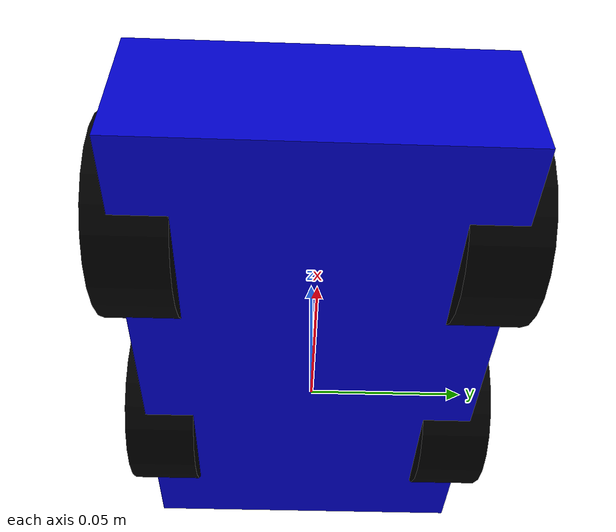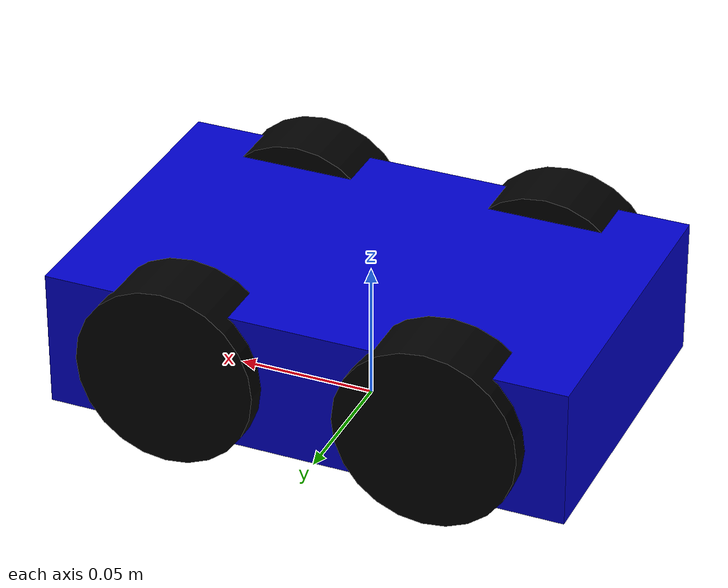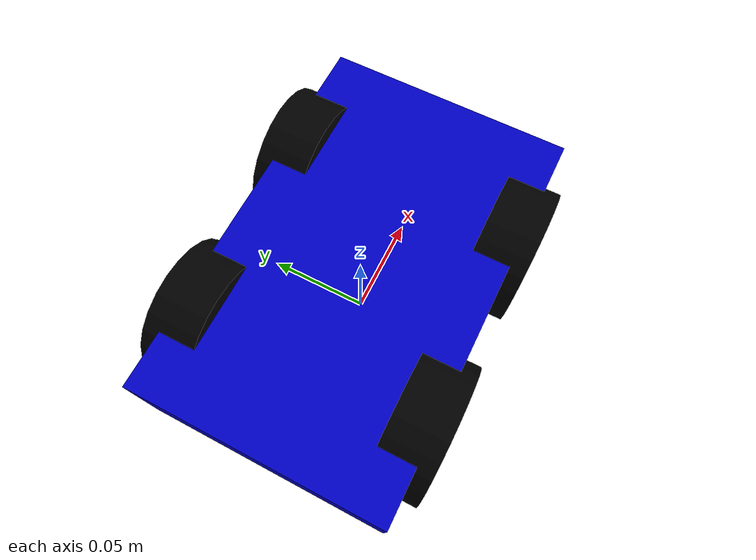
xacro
<?xml version="1.0"?>
<robot name="picarx" xmlns:xacro="http://ros.org/wiki/xacro">

  <xacro:property name="base_length" value="0.19" />
  <xacro:property name="base_width" value="0.12" />
  <xacro:property name="base_height" value="0.05" />
  <xacro:property name="wheel_radius" value="0.033" />
  <xacro:property name="wheel_width" value="0.025" />
  <xacro:property name="wheelbase" value="0.095" />
  <xacro:property name="track_width" value="0.11" />

  <material name="blue"><color rgba="0 0 0.8 1"/></material>
  <material name="black"><color rgba="0 0 0 1"/></material>

  <link name="base_link" />

  <link name="chassis">
    <visual>
      <geometry>
        <box size="${base_length} ${base_width} ${base_height}"/>
      </geometry>
      <material name="blue"/>
    </visual>
  </link>

  <joint name="chassis_joint" type="fixed">
    <parent link="base_link"/>
    <child link="chassis"/>
    <origin xyz="0 0 ${wheel_radius}"/>
  </joint>

  <xacro:macro name="rear_wheel" params="prefix suffix reflect">
    <link name="${prefix}_${suffix}_wheel">
      <visual>
        <origin rpy="1.5708 0 0" xyz="0 0 0"/>
        <geometry><cylinder length="${wheel_width}" radius="${wheel_radius}"/></geometry>
        <material name="black"/>
      </visual>
    </link>
    <joint name="${prefix}_${suffix}_wheel_joint" type="continuous">
      <parent link="base_link"/>
      <child link="${prefix}_${suffix}_wheel"/>
      <origin xyz="-${wheelbase/2} ${reflect * track_width/2} ${wheel_radius}" rpy="0 0 0"/>
      <axis xyz="0 1 0"/>
    </joint>
  </xacro:macro>

  <xacro:rear_wheel prefix="rear" suffix="left" reflect="1"/>
  <xacro:rear_wheel prefix="rear" suffix="right" reflect="-1"/>

  <xacro:macro name="front_wheel" params="prefix suffix reflect">
    <link name="${prefix}_${suffix}_wheel_steer">
      <visual><geometry><sphere radius="0.01"/></geometry></visual>
    </link>
    <link name="${prefix}_${suffix}_wheel">
      <visual>
        <origin rpy="1.5708 0 0" xyz="0 0 0"/>
        <geometry><cylinder length="${wheel_width}" radius="${wheel_radius}"/></geometry>
        <material name="black"/>
      </visual>
    </link>
    <joint name="${prefix}_${suffix}_steer_joint" type="revolute">
      <parent link="base_link"/>
      <child link="${prefix}_${suffix}_wheel_steer"/>
      <origin xyz="${wheelbase/2} ${reflect * track_width/2} ${wheel_radius}" rpy="0 0 0"/>
      <axis xyz="0 0 1"/>
      <limit effort="10" lower="-0.785" upper="0.785" velocity="1.0"/>
    </joint>
    <joint name="${prefix}_${suffix}_wheel_joint" type="continuous">
      <parent link="${prefix}_${suffix}_wheel_steer"/>
      <child link="${prefix}_${suffix}_wheel"/>
      <axis xyz="0 1 0"/>
    </joint>
  </xacro:macro>

  <xacro:front_wheel prefix="front" suffix="left" reflect="1"/>
  <xacro:front_wheel prefix="front" suffix="right" reflect="-1"/>

</robot>
